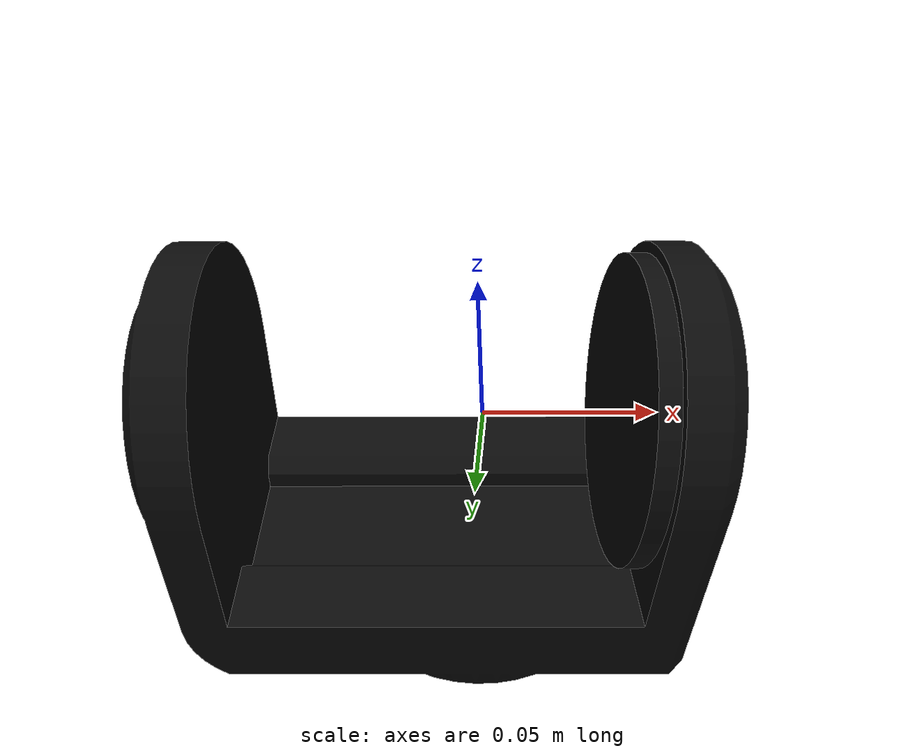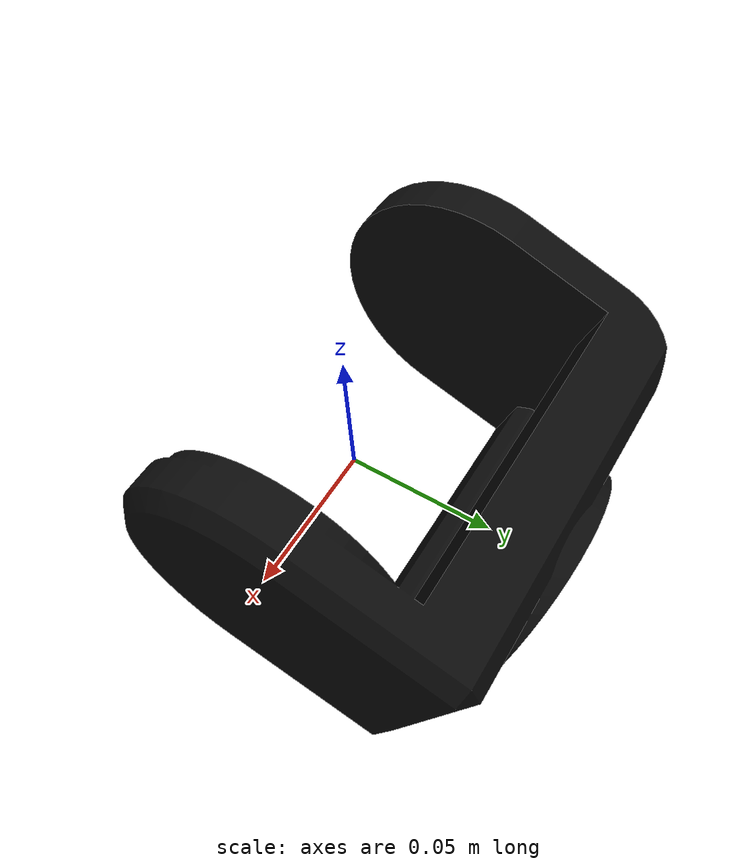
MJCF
<mujoco model="LINK_7">
  <default>
    <default class="visual">
      <geom group="2" type="mesh" contype="0" conaffinity="0"/>
    </default>
    <default class="collision">
      <geom group="3" type="mesh"/>
    </default>
  </default>
  <asset>
    <material name="10,10,10" specular="0.039216" shininess="1.0" rgba="0.039216 0.039216 0.039216 1.000000"/>
    <mesh file="LINK_7.obj"/>
    <mesh file="LINK_7_collision_0.obj"/>
    <mesh file="LINK_7_collision_1.obj"/>
    <mesh file="LINK_7_collision_2.obj"/>
    <mesh file="LINK_7_collision_3.obj"/>
    <mesh file="LINK_7_collision_4.obj"/>
    <mesh file="LINK_7_collision_5.obj"/>
    <mesh file="LINK_7_collision_6.obj"/>
    <mesh file="LINK_7_collision_7.obj"/>
    <mesh file="LINK_7_collision_8.obj"/>
    <mesh file="LINK_7_collision_9.obj"/>
    <mesh file="LINK_7_collision_10.obj"/>
    <mesh file="LINK_7_collision_11.obj"/>
    <mesh file="LINK_7_collision_12.obj"/>
    <mesh file="LINK_7_collision_13.obj"/>
    <mesh file="LINK_7_collision_14.obj"/>
    <mesh file="LINK_7_collision_15.obj"/>
    <mesh file="LINK_7_collision_16.obj"/>
    <mesh file="LINK_7_collision_17.obj"/>
    <mesh file="LINK_7_collision_18.obj"/>
    <mesh file="LINK_7_collision_19.obj"/>
  </asset>
  <worldbody>
    <body name="LINK_7">
      <geom material="10,10,10" mesh="LINK_7" class="visual"/>
      <geom mesh="LINK_7_collision_0" rgba="0.41569605536964827 0.6399832581329759 0.39677211356933384 1" class="collision"/>
      <geom mesh="LINK_7_collision_1" rgba="0.16894206372683096 0.2441350070006314 0.9161085377226984 1" class="collision"/>
      <geom mesh="LINK_7_collision_2" rgba="0.47860917976864603 0.15610975936389104 0.3196086432886125 1" class="collision"/>
      <geom mesh="LINK_7_collision_3" rgba="0.42267861383987815 0.9953811704275082 0.6221676576336242 1" class="collision"/>
      <geom mesh="LINK_7_collision_4" rgba="0.7468140837107738 0.8920919003831271 0.24556263407204393 1" class="collision"/>
      <geom mesh="LINK_7_collision_5" rgba="0.6081288166384249 0.8919455418544142 0.5897440325242388 1" class="collision"/>
      <geom mesh="LINK_7_collision_6" rgba="0.8863762567204904 0.19569896148798316 0.38687680660400625 1" class="collision"/>
      <geom mesh="LINK_7_collision_7" rgba="0.8992218756954781 0.7031402285489986 0.6363743854380745 1" class="collision"/>
      <geom mesh="LINK_7_collision_8" rgba="0.6086310117425036 0.6754192208051457 0.2270826005377128 1" class="collision"/>
      <geom mesh="LINK_7_collision_9" rgba="0.12667210711412624 0.19425677010181497 0.4572234124828265 1" class="collision"/>
      <geom mesh="LINK_7_collision_10" rgba="0.27950830102876034 0.6916155867377162 0.1410069311740314 1" class="collision"/>
      <geom mesh="LINK_7_collision_11" rgba="0.4213637918450539 0.8234237260210185 0.4380726078147881 1" class="collision"/>
      <geom mesh="LINK_7_collision_12" rgba="0.9903124395857643 0.5375503039437951 0.5070816488261447 1" class="collision"/>
      <geom mesh="LINK_7_collision_13" rgba="0.08807946793470223 0.6198811317854944 0.3213613183298676 1" class="collision"/>
      <geom mesh="LINK_7_collision_14" rgba="0.8861311298163145 0.3539415412071374 0.6072707657327204 1" class="collision"/>
      <geom mesh="LINK_7_collision_15" rgba="0.8167963685006217 0.653372667238061 0.7487400246592607 1" class="collision"/>
      <geom mesh="LINK_7_collision_16" rgba="0.7962110912642385 0.8511219692794575 0.9528900751326278 1" class="collision"/>
      <geom mesh="LINK_7_collision_17" rgba="0.15539709821141123 0.4900909700350795 0.562113608225905 1" class="collision"/>
      <geom mesh="LINK_7_collision_18" rgba="0.7983530562832664 0.35470239827709404 0.03024923150280734 1" class="collision"/>
      <geom mesh="LINK_7_collision_19" rgba="0.4225666326911862 0.29799377772417124 0.2889901864431055 1" class="collision"/>
    </body>
  </worldbody>
</mujoco>
